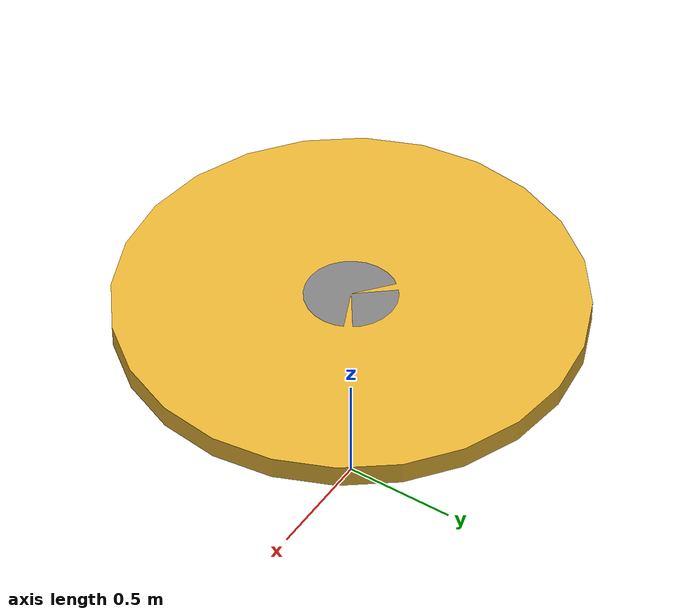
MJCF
<mujoco>
  <option gravity="0 0 -9.81"/>
  <worldbody>
    <!-- Rotating Disc (as thin cylinder) -->
    <body name="object_1" pos="0 0 1">
      <geom type="cylinder" size="1 0.05" density="1" rgba="0.9 0.7 0.2 1"/>
      <joint name="object_1_joint" type="free"/>
    </body>
    <!-- Support -->
    <body name="object_2" pos="0 0 1">
      <geom type="cylinder" size="0.2 0.05" rgba="0.5 0.5 0.5 1"/>
    </body>
    <!-- Ground Surface -->
    <body name="object_3" pos="-10 0 -10">
      <geom type="plane" size="25 25 0.1" rgba="0.7 0.7 0.7 1" friction="1 1 1"/>
    </body>
  </worldbody>
</mujoco>
